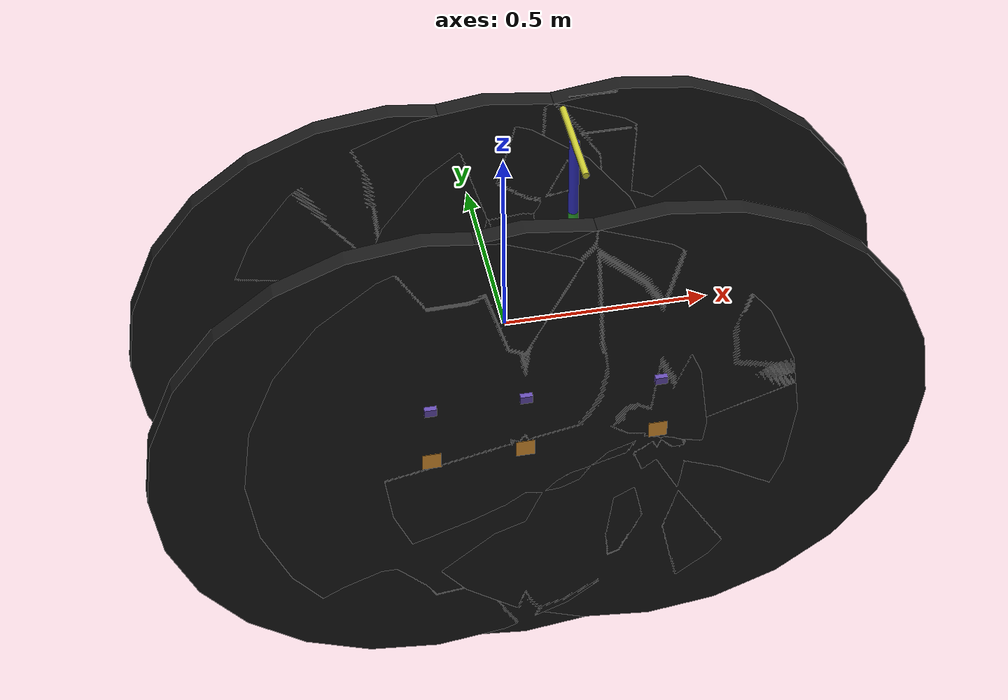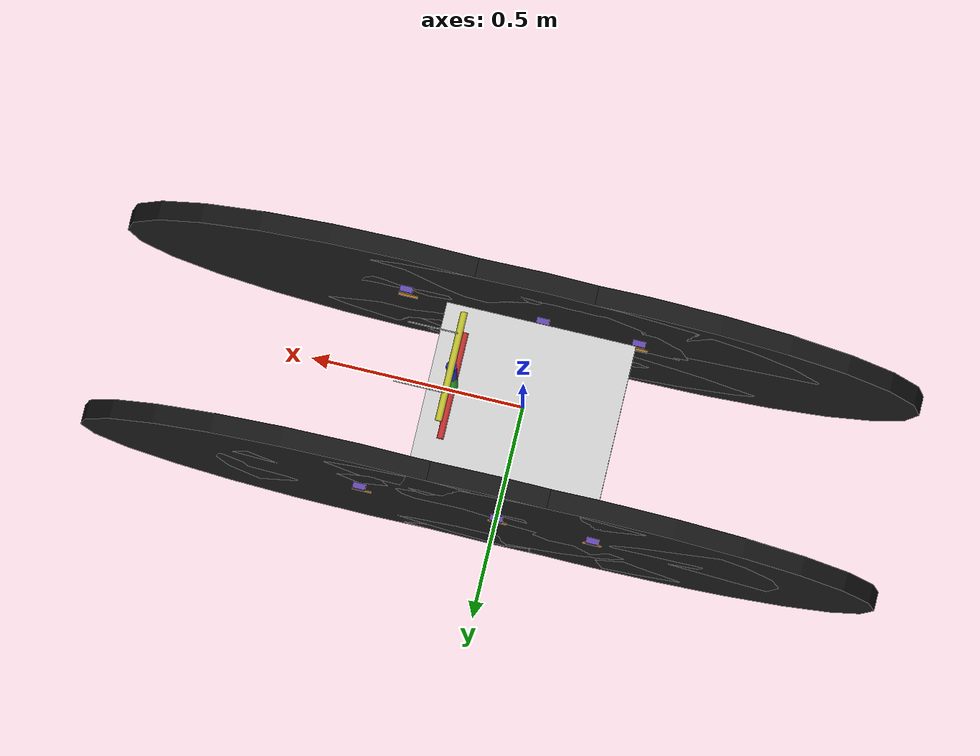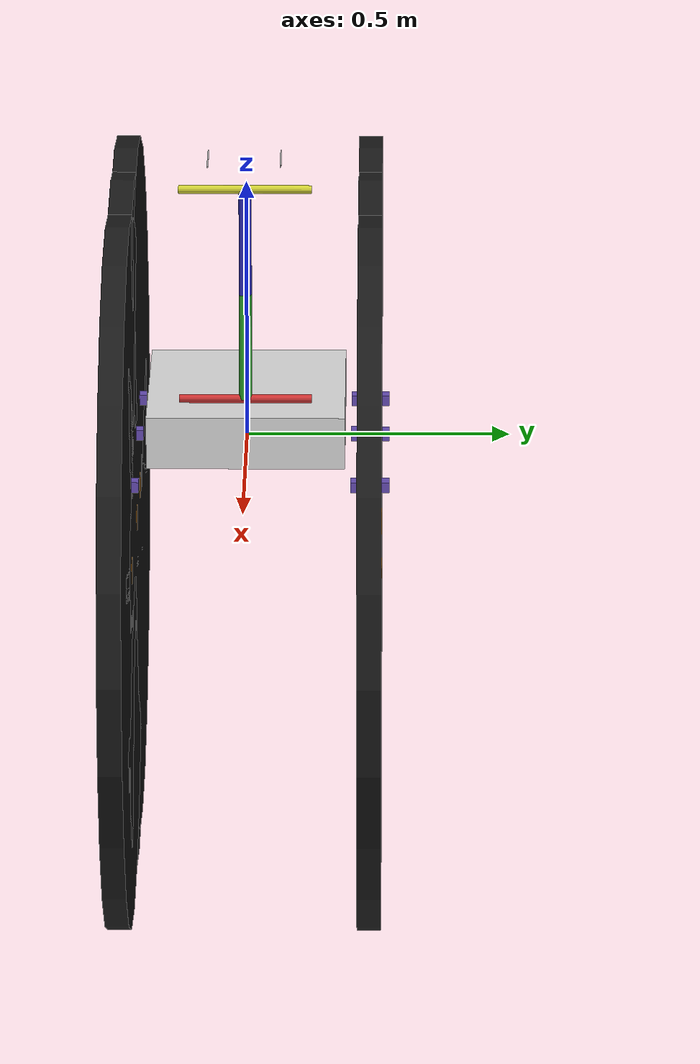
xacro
<?xml version="1.0"?>
<robot xmlns:xacro="http://www.ros.org/wiki/xacro" name="rover">
    <xacro:arg name="initial_positions_file" default="initial_positions.yaml" />

    <!-- Import rover urdf file -->
    <xacro:include filename="$(find rover_commands)/urdf/rover.urdf.xacro" />

    <!-- Import control_xacro -->
    <xacro:include filename="rover.ros2_control.xacro" />

    <xacro:rover_ros2_control name="FakeSystem" initial_positions_file="$(arg initial_positions_file)"/>

</robot>

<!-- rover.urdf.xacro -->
<robot name="rover" xmlns:xacro="http://www.ros.org/wiki/xacro">

  <!-- DIMENSIONS                                   -->

  <xacro:property name="steer_block_size_x" value="0.046"/>
  <xacro:property name="steer_block_size_y" value="0.046"/>
  <xacro:property name="steer_block_size_z" value="0.046"/>

  <xacro:property name="steer_zoff" value="0.173"/>

  <xacro:property name="wheel_attach_zoff" value="0.0"/>

  <xacro:property name="chassis_length" value="0.446"/>
  <xacro:property name="chassis_width"  value="0.375"/>
  <xacro:property name="chassis_height" value="0.1"/>

  <xacro:property name="wheel_x_front"    value="0.325"/>
  <xacro:property name="wheel_x_middle"   value="0.0"/>
  <xacro:property name="wheel_x_back"     value="-0.228"/>
  <xacro:property name="wheel_half_track" value="0.235"/>

  <xacro:property name="wheels_zoff" value="-0.183"/>

  <xacro:property name="top_block_size_x" value="0.03"/>
  <xacro:property name="top_block_size_y" value="0.073"/>
  <xacro:property name="top_block_size_z" value="0.02"/>

  <xacro:property name="wheel_radius" value="0.675"/>
  <xacro:property name="wheel_width"  value="0.045"/>

  <xacro:property name="cam_xoff" value="0.25"/>
  <xacro:property name="cam_zoff" value="0.02"/>
  <xacro:property name="imu_xoff" value="0.0"/>
  <xacro:property name="imu_zoff" value="-0.01"/>

  <xacro:property name="arm_base_xoff" value="0.165"/>
  <xacro:property name="arm_base_zoff" value="0.121"/>
  <xacro:property name="arm_segment_length" value="0.205"/>
  <xacro:property name="arm_gripper_offset" value="0.076"/>
  <xacro:property name="arm_gripper_finger_offset" value="0.068"/> <!-- TODO -->

  <xacro:property name="joint_radius" value="0.008"/>
  <xacro:property name="joint_length" value="0.25"/>

	<xacro:property name="arm_link_radius" value="0.012"/> <!-- TODO -->

  <xacro:property name="finger_size_x" value="0.115"/>
  <xacro:property name="finger_size_y" value="0.0024"/>
  <xacro:property name="finger_size_z" value="0.0025"/>

  <xacro:macro name="wheel_unit" params="name fb_offset y_reflect has_servo:=true">

    <link name="top_block_${name}">
      <visual>
        <origin xyz="0 0 0" rpy="0 0 0"/>
        <geometry>
          <box size="${top_block_size_x} ${top_block_size_y} ${top_block_size_z}"/>
        </geometry>
        <material name="block_purple">
          <color rgba="0.4 0.3 0.7 1.0"/>
        </material>
      </visual>
	  <collision>
        <origin xyz="0 0 0" rpy="0 0 0"/>
        <geometry>
          <box size="${top_block_size_x} ${top_block_size_y} ${top_block_size_z}"/>
        </geometry>
        <material name="block_purple">
          <color rgba="0.4 0.3 0.7 1.0"/>
        </material>
      </collision>
    </link>

    <joint name="top_block_${name}_joint" type="fixed">
      <parent link="base_link"/>
      <child link="top_block_${name}"/>
      <origin xyz="${fb_offset} ${y_reflect * wheel_half_track} 0" rpy="0 0 0"/>
    </joint>

    <link name="steer_block_${name}">
      <visual>
        <origin xyz="0 0 0" rpy="0 0 0"/>
        <geometry>
          <box size="${steer_block_size_x} ${steer_block_size_y} ${steer_block_size_z}"/>
        </geometry>
        <material name="steer_orange">
          <color rgba="0.9 0.6 0.2 1.0"/>
        </material>
      </visual>
	  <collision>
        <origin xyz="0 0 0" rpy="0 0 0"/>
        <geometry>
          <box size="${steer_block_size_x} ${steer_block_size_y} ${steer_block_size_z}"/>
        </geometry>
        <material name="steer_orange">
          <color rgba="0.9 0.6 0.2 1.0"/>
        </material>
      </collision>
    </link>

    <xacro:if value="${has_servo}">
      <joint name="steer_${name}_joint" type="revolute">
        <parent link="top_block_${name}"/>
        <child link="steer_block_${name}"/>
        <origin xyz="0 0 ${-steer_zoff}" rpy="0 0 0"/>
        <axis xyz="0 0 1"/>
        <limit lower="${-pi/2}" upper="${pi/2}" effort="10.0" velocity="2.0"/>
      </joint>
    </xacro:if>

    <xacro:unless value="${has_servo}">
      <joint name="steer_${name}_joint" type="fixed">
        <parent link="top_block_${name}"/>
        <child link="steer_block_${name}"/>
        <origin xyz="0 0 ${-steer_zoff}" rpy="0 0 0"/>
      </joint>
    </xacro:unless>

    <link name="wheel_${name}">
      <visual>
        <origin xyz="0 0 0" rpy="${pi/2} 0 0"/>
        <geometry>
          <cylinder radius="${wheel_radius}" length="${wheel_width}"/>
        </geometry>
        <material name="wheel_black">
          <color rgba="0.1 0.1 0.1 1.0"/>
        </material>
      </visual>
	  <collision>
        <origin xyz="0 0 0" rpy="${pi/2} 0 0"/>
        <geometry>
          <cylinder radius="${wheel_radius}" length="${wheel_width}"/>
        </geometry>
        <material name="wheel_black">
          <color rgba="0.1 0.1 0.1 1.0"/>
        </material>
      </collision>
    </link>

    <joint name="wheel_${name}_joint" type="continuous">
      <parent link="steer_block_${name}"/>
      <child link="wheel_${name}"/>
      <origin xyz="0 0 ${-wheel_attach_zoff}" rpy="0 0 0"/>
      <axis xyz="0 1 0"/>
    </joint>

  </xacro:macro>

  <xacro:macro name="revolute_joint_visual" params="link_name radius length r g b">

    <link name="${link_name}">
      <visual>
        <origin xyz="0 0 0" rpy="1.5708 0 0"/>
        <geometry>
          <cylinder radius="${radius}" length="${length}"/>
        </geometry>

        <material name="${link_name}_mat">
          <color rgba="${r} ${g} ${b} 1.0"/>
        </material>
      </visual>
	  <collision>
        <origin xyz="0 0 0" rpy="1.5708 0 0"/>
        <geometry>
          <cylinder radius="${radius}" length="${length}"/>
        </geometry>

        <material name="${link_name}_mat">
          <color rgba="${r} ${g} ${b} 1.0"/>
        </material>
      </collision>
    </link>

  </xacro:macro>

  <xacro:macro name="arm_segment_visual" params="link_name length radius r g b">

    <link name="${link_name}">
      <visual>
        <origin xyz="0 0 ${length/2}" rpy="0 0 0"/>

        <geometry>
          <cylinder radius="${radius}" length="${length}"/>
        </geometry>

        <material name="${link_name}_mat">
          <color rgba="${r} ${g} ${b} 1.0"/>
        </material>
      </visual>
	  <collision>
        <origin xyz="0 0 ${length/2}" rpy="0 0 0"/>

        <geometry>
          <cylinder radius="${radius}" length="${length}"/>
        </geometry>

        <material name="${link_name}_mat">
          <color rgba="${r} ${g} ${b} 1.0"/>
        </material>
      </collision>
    </link>

  </xacro:macro>

  <!-- WHEELS -->

  <link name="base_footprint" />

  <joint name="base_footprint_joint" type="fixed">
	<parent link="base_footprint"/>
	<child link="base_link"/>
	<origin xyz="0 0 0" rpy="0 0 0"/>
  </joint>

  <link name="base_link">
    <visual>
      <origin xyz="0 0 ${chassis_height/2}" rpy="0 0 0"/>
      <geometry>
        <box size="${chassis_length} ${chassis_width} ${chassis_height}"/>
      </geometry>
      <material name="chassis_grey">
        <color rgba="0.85 0.85 0.85 1.0"/>
      </material>
    </visual>
	<collision>
      <origin xyz="0 0 ${chassis_height/2}" rpy="0 0 0"/>
      <geometry>
        <box size="${chassis_length} ${chassis_width} ${chassis_height}"/>
      </geometry>
      <material name="chassis_grey">
        <color rgba="0.85 0.85 0.85 1.0"/>
      </material>
    </collision>
  </link>

  <!-- WHEELS -->

  <xacro:wheel_unit name="fl" fb_offset="${wheel_x_front}"  y_reflect="1"  has_servo="true"/>
  <xacro:wheel_unit name="fr" fb_offset="${wheel_x_front}"  y_reflect="-1" has_servo="true"/>
  <xacro:wheel_unit name="ml" fb_offset="${wheel_x_middle}" y_reflect="1"  has_servo="false"/>
  <xacro:wheel_unit name="mr" fb_offset="${wheel_x_middle}" y_reflect="-1" has_servo="false"/>
  <xacro:wheel_unit name="bl" fb_offset="${wheel_x_back}"   y_reflect="1"  has_servo="true"/>
  <xacro:wheel_unit name="br" fb_offset="${wheel_x_back}"   y_reflect="-1" has_servo="true"/>

  <!-- CAMERA -->

  <link name="camera_link"/>

  <joint name="camera_joint" type="fixed">
    <parent link="base_link"/>
    <child link="camera_link"/>
	<origin xyz="${cam_xoff} 0 ${cam_zoff}" rpy="0 0 0"/>
  </joint>

  <!-- IMU -->

  <link name="imu_link"/>

  <joint name="imu_joint" type="fixed">
    <parent link="base_link"/>
    <child link="imu_link"/>
	<origin xyz="${imu_xoff} 0 ${imu_zoff}" rpy="0 0 0"/>
  </joint>

  <!-- ARM -->

  <link name="arm_base_link"/>

  <joint name="arm_mount_joint" type="fixed">
    <parent link="base_link"/>
    <child link="arm_base_link"/>
		<origin xyz="${arm_base_xoff} 0 ${arm_base_zoff}" rpy="0 0 0"/>
  </joint>

  <!-- YAW (BASE ROTATION) -->

  <xacro:revolute_joint_visual
    link_name="arm_yaw_link"
    radius="${joint_radius}"
    length="${joint_length}"
	r="0.8" g="0.2" b="0.2"
  />

  <joint name="arm_yaw_joint" type="revolute">
    <parent link="arm_base_link"/>
    <child link="arm_yaw_link"/>
    <origin xyz="0 0 0" rpy="0 0 0"/>
    <axis xyz="0 0 1"/>   <!-- vertical rotation -->
	<limit lower="-${pi/2}" upper="${pi/2}" effort="10.0" velocity="2.0"/>
  </joint>

  <link name="arm_planar_frame"/>
  <joint name="arm_planar_joint" type="fixed">
    <parent link="arm_yaw_link"/>
    <child link="arm_planar_frame"/>
    <origin xyz="0 0 0" rpy="0 0 0"/>
  </joint>

  <!-- SHOULDER (PITCH) -->

  <xacro:arm_segment_visual
    link_name="shoulder_link"
    length="${arm_segment_length}"
    radius="${arm_link_radius}"
	r="0.2" g="0.7" b="0.2"
  />

  <joint name="shoulder_joint" type="revolute">
    <parent link="arm_planar_frame"/>
    <child link="shoulder_link"/>
	<origin xyz="0 0 0" rpy="0 0 0"/>
    <axis xyz="0 1 0"/>
	<limit lower="-${pi/2}" upper="${pi/2}" effort="10.0" velocity="2.0"/>
  </joint>

  <!-- ELBOW (PITCH) -->

  <xacro:arm_segment_visual
    link_name="elbow_link"
    length="${arm_segment_length}"
    radius="${arm_link_radius}"
	r="0.2" g="0.2" b="0.8"
  />

  <joint name="elbow_joint" type="revolute">
	<parent link="shoulder_link"/>
	<child link="elbow_link"/>
	<origin xyz="0 0 ${arm_segment_length}" rpy="0 0 0"/>
	<axis xyz="0 1 0"/>
	<limit lower="-${pi/2}" upper="${pi/2}" effort="10.0" velocity="2.0"/>
  </joint>

  <!-- WRIST -->

  <xacro:revolute_joint_visual
    link_name="wrist_link"
    radius="${joint_radius}"
    length="${joint_length}"
	r="0.8" g="0.8" b="0.2"
  />

  <joint name="wrist_fixed" type="fixed">
	<parent link="elbow_link"/>
	<child link="wrist_link"/>
	<origin xyz="0 0 ${arm_segment_length}" rpy="0 0 0"/>
  </joint>

  <!-- GRIPPER -->
  <link name="gripper_base_link"/>

  <joint name="gripper_mount_joint" type="fixed">
    <parent link="wrist_link"/>
    <child link="gripper_base_link"/>
	<origin xyz="0 0 ${arm_gripper_offset}" rpy="0 0 0"/>
  </joint>

  <link name="left_finger_link">
	<visual>
	  <origin xyz="${finger_size_x/2} 0 0" rpy="0 0 0"/>

	  <geometry>
		<box size="${finger_size_x} ${finger_size_y} ${finger_size_z}"/>
	  </geometry>

	  <material name="finger_mat">
		<color rgba="0.7 0.7 0.7 1.0"/>
	  </material>
	</visual>
	<collision>
	  <origin xyz="${finger_size_x/2} 0 0" rpy="0 0 0"/>

	  <geometry>
		<box size="${finger_size_x} ${finger_size_y} ${finger_size_z}"/>
	  </geometry>

	  <material name="finger_mat">
		<color rgba="0.7 0.7 0.7 1.0"/>
	  </material>
	</collision>
  </link>

  <joint name="left_finger_joint" type="prismatic">
    <parent link="gripper_base_link"/>
    <child link="left_finger_link"/>
	<origin xyz="0 ${arm_gripper_finger_offset} 0" rpy="0 0 0"/>
    <axis xyz="0 1 0"/>
	<limit lower="-${arm_gripper_finger_offset - finger_size_y / 2}" upper="0.0" effort="10" velocity="0.1"/>
  </joint>

  <link name="right_finger_link">
	<visual>
	  <origin xyz="${finger_size_x/2} 0 0" rpy="0 0 0"/>

	  <geometry>
		<box size="${finger_size_x} ${finger_size_y} ${finger_size_z}"/>
	  </geometry>

	  <material name="finger_mat">
		<color rgba="0.7 0.7 0.7 1.0"/>
	  </material>
	</visual>
	<collision>
	  <origin xyz="${finger_size_x/2} 0 0" rpy="0 0 0"/>

	  <geometry>
		<box size="${finger_size_x} ${finger_size_y} ${finger_size_z}"/>
	  </geometry>

	  <material name="finger_mat">
		<color rgba="0.7 0.7 0.7 1.0"/>
	  </material>
	</collision>
  </link>

  <joint name="right_finger_joint" type="prismatic">
    <parent link="gripper_base_link"/>
    <child link="right_finger_link"/>
	<origin xyz="0 -${arm_gripper_finger_offset} 0" rpy="0 0 0"/>
    <axis xyz="0 -1 0"/>
	<limit lower="-${arm_gripper_finger_offset - finger_size_y / 2}" upper="0.0" effort="10" velocity="0.1"/>
  </joint>

</robot>
